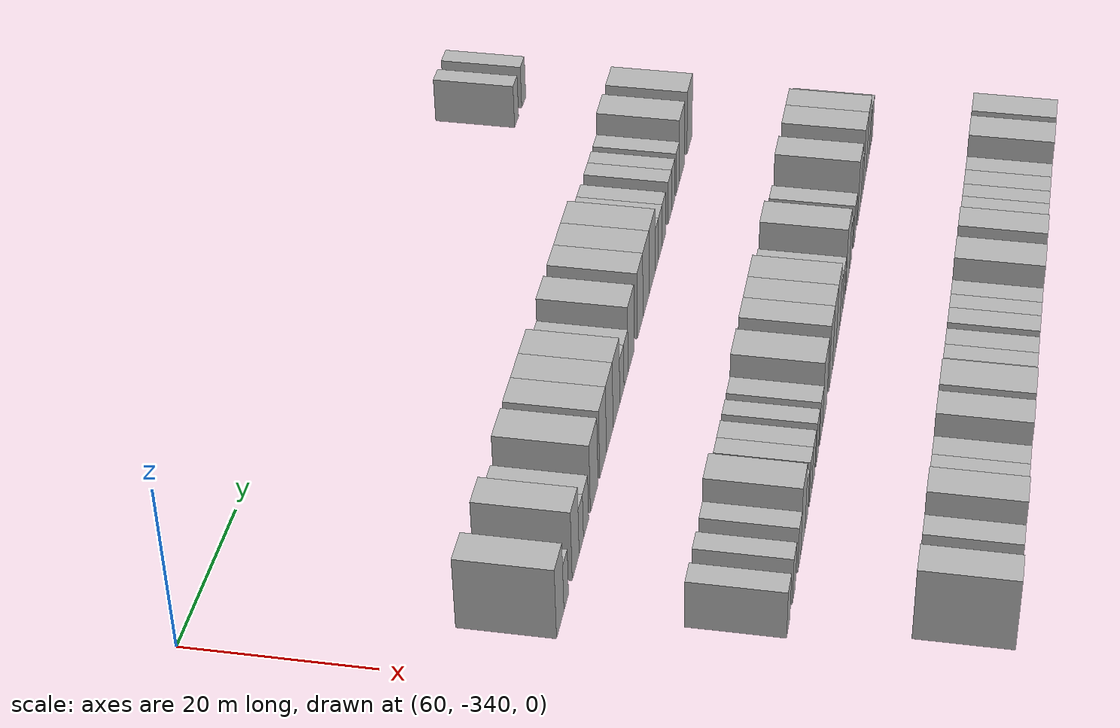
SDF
<sdf version="1.6">
 <world name="default">
  <model name="building_420">
   <static>1</static>
   <pose>69.0000 -244.6926 0 0.000000 0.000000 0.000000</pose>
   <link name="link">
    <pose>0 0 3.00 0 0 0</pose>
    <collision name="collision"><geometry><box><size>10.0000 2.4777 6.0000</size></box></geometry></collision>
    <visual name="visual">
     <cast_shadows>0</cast_shadows>
     <geometry><box><size>10.0000 2.4777 6.0000</size></box></geometry>
     <material>
      <script>
       <uri>model://HANNAS_wall/materials/scripts</uri>
       <uri>model://HANNAS_wall/materials/textures</uri>
       <name>vrc/HANNAS_wall</name>
      </script>
     </material>
    </visual>
   </link>
  </model>
  <model name="building_421">
   <static>1</static>
   <pose>69.0000 -240.1785 0 0.000000 0.000000 0.000000</pose>
   <link name="link">
    <pose>0 0 3.00 0 0 0</pose>
    <collision name="collision"><geometry><box><size>10.0000 2.5506 6.0000</size></box></geometry></collision>
    <visual name="visual">
     <cast_shadows>0</cast_shadows>
     <geometry><box><size>10.0000 2.5506 6.0000</size></box></geometry>
     <material>
      <script>
       <uri>model://HANNAS_wall/materials/scripts</uri>
       <uri>model://HANNAS_wall/materials/textures</uri>
       <name>vrc/HANNAS_wall</name>
      </script>
     </material>
    </visual>
   </link>
  </model>
  <model name="building_576">
   <static>1</static>
   <pose>91.0000 -331.3792 0 0.000000 0.000000 0.000000</pose>
   <link name="link">
    <pose>0 0 4.50 0 0 0</pose>
    <collision name="collision"><geometry><box><size>10.0000 3.8720 9.0000</size></box></geometry></collision>
    <visual name="visual">
     <cast_shadows>0</cast_shadows>
     <geometry><box><size>10.0000 3.8720 9.0000</size></box></geometry>
     <material>
      <script>
       <uri>model://HANNAS_wall/materials/scripts</uri>
       <uri>model://HANNAS_wall/materials/textures</uri>
       <name>vrc/HANNAS_wall</name>
      </script>
     </material>
    </visual>
   </link>
  </model>
  <model name="building_577">
   <static>1</static>
   <pose>91.0000 -328.2368 0 0.000000 0.000000 0.000000</pose>
   <link name="link">
    <pose>0 0 3.00 0 0 0</pose>
    <collision name="collision"><geometry><box><size>10.0000 2.4127 6.0000</size></box></geometry></collision>
    <visual name="visual">
     <cast_shadows>0</cast_shadows>
     <geometry><box><size>10.0000 2.4127 6.0000</size></box></geometry>
     <material>
      <script>
       <uri>model://HANNAS_wall/materials/scripts</uri>
       <uri>model://HANNAS_wall/materials/textures</uri>
       <name>vrc/HANNAS_wall</name>
      </script>
     </material>
    </visual>
   </link>
  </model>
  <model name="building_578">
   <static>1</static>
   <pose>91.0000 -323.1282 0 0.000000 0.000000 0.000000</pose>
   <link name="link">
    <pose>0 0 4.50 0 0 0</pose>
    <collision name="collision"><geometry><box><size>10.0000 3.8047 9.0000</size></box></geometry></collision>
    <visual name="visual">
     <cast_shadows>0</cast_shadows>
     <geometry><box><size>10.0000 3.8047 9.0000</size></box></geometry>
     <material>
      <script>
       <uri>model://HANNAS_wall/materials/scripts</uri>
       <uri>model://HANNAS_wall/materials/textures</uri>
       <name>vrc/HANNAS_wall</name>
      </script>
     </material>
    </visual>
   </link>
  </model>
  <model name="building_579">
   <static>1</static>
   <pose>91.0000 -320.0210 0 0.000000 0.000000 0.000000</pose>
   <link name="link">
    <pose>0 0 3.00 0 0 0</pose>
    <collision name="collision"><geometry><box><size>10.0000 2.4098 6.0000</size></box></geometry></collision>
    <visual name="visual">
     <cast_shadows>0</cast_shadows>
     <geometry><box><size>10.0000 2.4098 6.0000</size></box></geometry>
     <material>
      <script>
       <uri>model://HANNAS_wall/materials/scripts</uri>
       <uri>model://HANNAS_wall/materials/textures</uri>
       <name>vrc/HANNAS_wall</name>
      </script>
     </material>
    </visual>
   </link>
  </model>
  <model name="building_580">
   <static>1</static>
   <pose>91.0000 -317.3515 0 0.000000 0.000000 0.000000</pose>
   <link name="link">
    <pose>0 0 3.00 0 0 0</pose>
    <collision name="collision"><geometry><box><size>10.0000 2.9292 6.0000</size></box></geometry></collision>
    <visual name="visual">
     <cast_shadows>0</cast_shadows>
     <geometry><box><size>10.0000 2.9292 6.0000</size></box></geometry>
     <material>
      <script>
       <uri>model://HANNAS_wall/materials/scripts</uri>
       <uri>model://HANNAS_wall/materials/textures</uri>
       <name>vrc/HANNAS_wall</name>
      </script>
     </material>
    </visual>
   </link>
  </model>
  <model name="building_581">
   <static>1</static>
   <pose>91.0000 -312.6410 0 0.000000 0.000000 0.000000</pose>
   <link name="link">
    <pose>0 0 4.50 0 0 0</pose>
    <collision name="collision"><geometry><box><size>10.0000 4.4918 9.0000</size></box></geometry></collision>
    <visual name="visual">
     <cast_shadows>0</cast_shadows>
     <geometry><box><size>10.0000 4.4918 9.0000</size></box></geometry>
     <material>
      <script>
       <uri>model://HANNAS_wall/materials/scripts</uri>
       <uri>model://HANNAS_wall/materials/textures</uri>
       <name>vrc/HANNAS_wall</name>
      </script>
     </material>
    </visual>
   </link>
  </model>
  <model name="building_582">
   <static>1</static>
   <pose>91.0000 -307.3725 0 0.000000 0.000000 0.000000</pose>
   <link name="link">
    <pose>0 0 4.50 0 0 0</pose>
    <collision name="collision"><geometry><box><size>10.0000 4.0453 9.0000</size></box></geometry></collision>
    <visual name="visual">
     <cast_shadows>0</cast_shadows>
     <geometry><box><size>10.0000 4.0453 9.0000</size></box></geometry>
     <material>
      <script>
       <uri>model://HANNAS_wall/materials/scripts</uri>
       <uri>model://HANNAS_wall/materials/textures</uri>
       <name>vrc/HANNAS_wall</name>
      </script>
     </material>
    </visual>
   </link>
  </model>
  <model name="building_583">
   <static>1</static>
   <pose>91.0000 -303.3075 0 0.000000 0.000000 0.000000</pose>
   <link name="link">
    <pose>0 0 4.50 0 0 0</pose>
    <collision name="collision"><geometry><box><size>10.0000 4.0848 9.0000</size></box></geometry></collision>
    <visual name="visual">
     <cast_shadows>0</cast_shadows>
     <geometry><box><size>10.0000 4.0848 9.0000</size></box></geometry>
     <material>
      <script>
       <uri>model://HANNAS_wall/materials/scripts</uri>
       <uri>model://HANNAS_wall/materials/textures</uri>
       <name>vrc/HANNAS_wall</name>
      </script>
     </material>
    </visual>
   </link>
  </model>
  <model name="building_584">
   <static>1</static>
   <pose>91.0000 -299.1577 0 0.000000 0.000000 0.000000</pose>
   <link name="link">
    <pose>0 0 4.50 0 0 0</pose>
    <collision name="collision"><geometry><box><size>10.0000 4.2147 9.0000</size></box></geometry></collision>
    <visual name="visual">
     <cast_shadows>0</cast_shadows>
     <geometry><box><size>10.0000 4.2147 9.0000</size></box></geometry>
     <material>
      <script>
       <uri>model://HANNAS_wall/materials/scripts</uri>
       <uri>model://HANNAS_wall/materials/textures</uri>
       <name>vrc/HANNAS_wall</name>
      </script>
     </material>
    </visual>
   </link>
  </model>
  <model name="building_585">
   <static>1</static>
   <pose>91.0000 -295.7177 0 0.000000 0.000000 0.000000</pose>
   <link name="link">
    <pose>0 0 3.00 0 0 0</pose>
    <collision name="collision"><geometry><box><size>10.0000 2.6655 6.0000</size></box></geometry></collision>
    <visual name="visual">
     <cast_shadows>0</cast_shadows>
     <geometry><box><size>10.0000 2.6655 6.0000</size></box></geometry>
     <material>
      <script>
       <uri>model://HANNAS_wall/materials/scripts</uri>
       <uri>model://HANNAS_wall/materials/textures</uri>
       <name>vrc/HANNAS_wall</name>
      </script>
     </material>
    </visual>
   </link>
  </model>
  <model name="building_586">
   <static>1</static>
   <pose>91.0000 -293.0363 0 0.000000 0.000000 0.000000</pose>
   <link name="link">
    <pose>0 0 3.00 0 0 0</pose>
    <collision name="collision"><geometry><box><size>10.0000 2.6972 6.0000</size></box></geometry></collision>
    <visual name="visual">
     <cast_shadows>0</cast_shadows>
     <geometry><box><size>10.0000 2.6972 6.0000</size></box></geometry>
     <material>
      <script>
       <uri>model://HANNAS_wall/materials/scripts</uri>
       <uri>model://HANNAS_wall/materials/textures</uri>
       <name>vrc/HANNAS_wall</name>
      </script>
     </material>
    </visual>
   </link>
  </model>
  <model name="building_587">
   <static>1</static>
   <pose>91.0000 -289.6109 0 0.000000 0.000000 0.000000</pose>
   <link name="link">
    <pose>0 0 4.50 0 0 0</pose>
    <collision name="collision"><geometry><box><size>10.0000 4.1536 9.0000</size></box></geometry></collision>
    <visual name="visual">
     <cast_shadows>0</cast_shadows>
     <geometry><box><size>10.0000 4.1536 9.0000</size></box></geometry>
     <material>
      <script>
       <uri>model://HANNAS_wall/materials/scripts</uri>
       <uri>model://HANNAS_wall/materials/textures</uri>
       <name>vrc/HANNAS_wall</name>
      </script>
     </material>
    </visual>
   </link>
  </model>
  <model name="building_588">
   <static>1</static>
   <pose>91.0000 -283.5965 0 0.000000 0.000000 0.000000</pose>
   <link name="link">
    <pose>0 0 4.50 0 0 0</pose>
    <collision name="collision"><geometry><box><size>10.0000 3.8751 9.0000</size></box></geometry></collision>
    <visual name="visual">
     <cast_shadows>0</cast_shadows>
     <geometry><box><size>10.0000 3.8751 9.0000</size></box></geometry>
     <material>
      <script>
       <uri>model://HANNAS_wall/materials/scripts</uri>
       <uri>model://HANNAS_wall/materials/textures</uri>
       <name>vrc/HANNAS_wall</name>
      </script>
     </material>
    </visual>
   </link>
  </model>
  <model name="building_589">
   <static>1</static>
   <pose>91.0000 -279.5298 0 0.000000 0.000000 0.000000</pose>
   <link name="link">
    <pose>0 0 4.50 0 0 0</pose>
    <collision name="collision"><geometry><box><size>10.0000 4.2583 9.0000</size></box></geometry></collision>
    <visual name="visual">
     <cast_shadows>0</cast_shadows>
     <geometry><box><size>10.0000 4.2583 9.0000</size></box></geometry>
     <material>
      <script>
       <uri>model://HANNAS_wall/materials/scripts</uri>
       <uri>model://HANNAS_wall/materials/textures</uri>
       <name>vrc/HANNAS_wall</name>
      </script>
     </material>
    </visual>
   </link>
  </model>
  <model name="building_590">
   <static>1</static>
   <pose>91.0000 -275.2527 0 0.000000 0.000000 0.000000</pose>
   <link name="link">
    <pose>0 0 4.50 0 0 0</pose>
    <collision name="collision"><geometry><box><size>10.0000 4.2958 9.0000</size></box></geometry></collision>
    <visual name="visual">
     <cast_shadows>0</cast_shadows>
     <geometry><box><size>10.0000 4.2958 9.0000</size></box></geometry>
     <material>
      <script>
       <uri>model://HANNAS_wall/materials/scripts</uri>
       <uri>model://HANNAS_wall/materials/textures</uri>
       <name>vrc/HANNAS_wall</name>
      </script>
     </material>
    </visual>
   </link>
  </model>
  <model name="building_591">
   <static>1</static>
   <pose>91.0000 -271.8730 0 0.000000 0.000000 0.000000</pose>
   <link name="link">
    <pose>0 0 3.00 0 0 0</pose>
    <collision name="collision"><geometry><box><size>10.0000 2.4636 6.0000</size></box></geometry></collision>
    <visual name="visual">
     <cast_shadows>0</cast_shadows>
     <geometry><box><size>10.0000 2.4636 6.0000</size></box></geometry>
     <material>
      <script>
       <uri>model://HANNAS_wall/materials/scripts</uri>
       <uri>model://HANNAS_wall/materials/textures</uri>
       <name>vrc/HANNAS_wall</name>
      </script>
     </material>
    </visual>
   </link>
  </model>
  <model name="building_592">
   <static>1</static>
   <pose>91.0000 -269.2854 0 0.000000 0.000000 0.000000</pose>
   <link name="link">
    <pose>0 0 3.00 0 0 0</pose>
    <collision name="collision"><geometry><box><size>10.0000 2.7117 6.0000</size></box></geometry></collision>
    <visual name="visual">
     <cast_shadows>0</cast_shadows>
     <geometry><box><size>10.0000 2.7117 6.0000</size></box></geometry>
     <material>
      <script>
       <uri>model://HANNAS_wall/materials/scripts</uri>
       <uri>model://HANNAS_wall/materials/textures</uri>
       <name>vrc/HANNAS_wall</name>
      </script>
     </material>
    </visual>
   </link>
  </model>
  <model name="building_593">
   <static>1</static>
   <pose>91.0000 -266.6570 0 0.000000 0.000000 0.000000</pose>
   <link name="link">
    <pose>0 0 3.00 0 0 0</pose>
    <collision name="collision"><geometry><box><size>10.0000 2.5451 6.0000</size></box></geometry></collision>
    <visual name="visual">
     <cast_shadows>0</cast_shadows>
     <geometry><box><size>10.0000 2.5451 6.0000</size></box></geometry>
     <material>
      <script>
       <uri>model://HANNAS_wall/materials/scripts</uri>
       <uri>model://HANNAS_wall/materials/textures</uri>
       <name>vrc/HANNAS_wall</name>
      </script>
     </material>
    </visual>
   </link>
  </model>
  <model name="building_594">
   <static>1</static>
   <pose>91.0000 -262.1026 0 0.000000 0.000000 0.000000</pose>
   <link name="link">
    <pose>0 0 3.00 0 0 0</pose>
    <collision name="collision"><geometry><box><size>10.0000 2.5636 6.0000</size></box></geometry></collision>
    <visual name="visual">
     <cast_shadows>0</cast_shadows>
     <geometry><box><size>10.0000 2.5636 6.0000</size></box></geometry>
     <material>
      <script>
       <uri>model://HANNAS_wall/materials/scripts</uri>
       <uri>model://HANNAS_wall/materials/textures</uri>
       <name>vrc/HANNAS_wall</name>
      </script>
     </material>
    </visual>
   </link>
  </model>
  <model name="building_595">
   <static>1</static>
   <pose>91.0000 -259.6098 0 0.000000 0.000000 0.000000</pose>
   <link name="link">
    <pose>0 0 3.00 0 0 0</pose>
    <collision name="collision"><geometry><box><size>10.0000 2.4220 6.0000</size></box></geometry></collision>
    <visual name="visual">
     <cast_shadows>0</cast_shadows>
     <geometry><box><size>10.0000 2.4220 6.0000</size></box></geometry>
     <material>
      <script>
       <uri>model://HANNAS_wall/materials/scripts</uri>
       <uri>model://HANNAS_wall/materials/textures</uri>
       <name>vrc/HANNAS_wall</name>
      </script>
     </material>
    </visual>
   </link>
  </model>
  <model name="building_596">
   <static>1</static>
   <pose>91.0000 -256.0895 0 0.000000 0.000000 0.000000</pose>
   <link name="link">
    <pose>0 0 3.00 0 0 0</pose>
    <collision name="collision"><geometry><box><size>10.0000 2.6187 6.0000</size></box></geometry></collision>
    <visual name="visual">
     <cast_shadows>0</cast_shadows>
     <geometry><box><size>10.0000 2.6187 6.0000</size></box></geometry>
     <material>
      <script>
       <uri>model://HANNAS_wall/materials/scripts</uri>
       <uri>model://HANNAS_wall/materials/textures</uri>
       <name>vrc/HANNAS_wall</name>
      </script>
     </material>
    </visual>
   </link>
  </model>
  <model name="building_597">
   <static>1</static>
   <pose>91.0000 -252.6526 0 0.000000 0.000000 0.000000</pose>
   <link name="link">
    <pose>0 0 4.50 0 0 0</pose>
    <collision name="collision"><geometry><box><size>10.0000 4.2550 9.0000</size></box></geometry></collision>
    <visual name="visual">
     <cast_shadows>0</cast_shadows>
     <geometry><box><size>10.0000 4.2550 9.0000</size></box></geometry>
     <material>
      <script>
       <uri>model://HANNAS_wall/materials/scripts</uri>
       <uri>model://HANNAS_wall/materials/textures</uri>
       <name>vrc/HANNAS_wall</name>
      </script>
     </material>
    </visual>
   </link>
  </model>
  <model name="building_598">
   <static>1</static>
   <pose>91.0000 -246.3893 0 0.000000 0.000000 0.000000</pose>
   <link name="link">
    <pose>0 0 4.50 0 0 0</pose>
    <collision name="collision"><geometry><box><size>10.0000 4.2717 9.0000</size></box></geometry></collision>
    <visual name="visual">
     <cast_shadows>0</cast_shadows>
     <geometry><box><size>10.0000 4.2717 9.0000</size></box></geometry>
     <material>
      <script>
       <uri>model://HANNAS_wall/materials/scripts</uri>
       <uri>model://HANNAS_wall/materials/textures</uri>
       <name>vrc/HANNAS_wall</name>
      </script>
     </material>
    </visual>
   </link>
  </model>
  <model name="building_768">
   <static>1</static>
   <pose>113.0000 -328.4091 0 0.000000 0.000000 0.000000</pose>
   <link name="link">
    <pose>0 0 3.00 0 0 0</pose>
    <collision name="collision"><geometry><box><size>10.0000 2.7347 6.0000</size></box></geometry></collision>
    <visual name="visual">
     <cast_shadows>0</cast_shadows>
     <geometry><box><size>10.0000 2.7347 6.0000</size></box></geometry>
     <material>
      <script>
       <uri>model://HANNAS_wall/materials/scripts</uri>
       <uri>model://HANNAS_wall/materials/textures</uri>
       <name>vrc/HANNAS_wall</name>
      </script>
     </material>
    </visual>
   </link>
  </model>
  <model name="building_769">
   <static>1</static>
   <pose>113.0000 -323.7801 0 0.000000 0.000000 0.000000</pose>
   <link name="link">
    <pose>0 0 3.00 0 0 0</pose>
    <collision name="collision"><geometry><box><size>10.0000 2.5232 6.0000</size></box></geometry></collision>
    <visual name="visual">
     <cast_shadows>0</cast_shadows>
     <geometry><box><size>10.0000 2.5232 6.0000</size></box></geometry>
     <material>
      <script>
       <uri>model://HANNAS_wall/materials/scripts</uri>
       <uri>model://HANNAS_wall/materials/textures</uri>
       <name>vrc/HANNAS_wall</name>
      </script>
     </material>
    </visual>
   </link>
  </model>
  <model name="building_770">
   <static>1</static>
   <pose>113.0000 -319.2558 0 0.000000 0.000000 0.000000</pose>
   <link name="link">
    <pose>0 0 3.00 0 0 0</pose>
    <collision name="collision"><geometry><box><size>10.0000 2.5254 6.0000</size></box></geometry></collision>
    <visual name="visual">
     <cast_shadows>0</cast_shadows>
     <geometry><box><size>10.0000 2.5254 6.0000</size></box></geometry>
     <material>
      <script>
       <uri>model://HANNAS_wall/materials/scripts</uri>
       <uri>model://HANNAS_wall/materials/textures</uri>
       <name>vrc/HANNAS_wall</name>
      </script>
     </material>
    </visual>
   </link>
  </model>
  <model name="building_771">
   <static>1</static>
   <pose>113.0000 -316.0476 0 0.000000 0.000000 0.000000</pose>
   <link name="link">
    <pose>0 0 4.50 0 0 0</pose>
    <collision name="collision"><geometry><box><size>10.0000 3.8910 9.0000</size></box></geometry></collision>
    <visual name="visual">
     <cast_shadows>0</cast_shadows>
     <geometry><box><size>10.0000 3.8910 9.0000</size></box></geometry>
     <material>
      <script>
       <uri>model://HANNAS_wall/materials/scripts</uri>
       <uri>model://HANNAS_wall/materials/textures</uri>
       <name>vrc/HANNAS_wall</name>
      </script>
     </material>
    </visual>
   </link>
  </model>
  <model name="building_772">
   <static>1</static>
   <pose>113.0000 -312.7979 0 0.000000 0.000000 0.000000</pose>
   <link name="link">
    <pose>0 0 3.00 0 0 0</pose>
    <collision name="collision"><geometry><box><size>10.0000 2.6083 6.0000</size></box></geometry></collision>
    <visual name="visual">
     <cast_shadows>0</cast_shadows>
     <geometry><box><size>10.0000 2.6083 6.0000</size></box></geometry>
     <material>
      <script>
       <uri>model://HANNAS_wall/materials/scripts</uri>
       <uri>model://HANNAS_wall/materials/textures</uri>
       <name>vrc/HANNAS_wall</name>
      </script>
     </material>
    </visual>
   </link>
  </model>
  <model name="building_773">
   <static>1</static>
   <pose>113.0000 -309.2476 0 0.000000 0.000000 0.000000</pose>
   <link name="link">
    <pose>0 0 3.00 0 0 0</pose>
    <collision name="collision"><geometry><box><size>10.0000 2.4923 6.0000</size></box></geometry></collision>
    <visual name="visual">
     <cast_shadows>0</cast_shadows>
     <geometry><box><size>10.0000 2.4923 6.0000</size></box></geometry>
     <material>
      <script>
       <uri>model://HANNAS_wall/materials/scripts</uri>
       <uri>model://HANNAS_wall/materials/textures</uri>
       <name>vrc/HANNAS_wall</name>
      </script>
     </material>
    </visual>
   </link>
  </model>
  <model name="building_774">
   <static>1</static>
   <pose>113.0000 -306.6369 0 0.000000 0.000000 0.000000</pose>
   <link name="link">
    <pose>0 0 3.00 0 0 0</pose>
    <collision name="collision"><geometry><box><size>10.0000 2.7291 6.0000</size></box></geometry></collision>
    <visual name="visual">
     <cast_shadows>0</cast_shadows>
     <geometry><box><size>10.0000 2.7291 6.0000</size></box></geometry>
     <material>
      <script>
       <uri>model://HANNAS_wall/materials/scripts</uri>
       <uri>model://HANNAS_wall/materials/textures</uri>
       <name>vrc/HANNAS_wall</name>
      </script>
     </material>
    </visual>
   </link>
  </model>
  <model name="building_775">
   <static>1</static>
   <pose>113.0000 -303.0395 0 0.000000 0.000000 0.000000</pose>
   <link name="link">
    <pose>0 0 3.00 0 0 0</pose>
    <collision name="collision"><geometry><box><size>10.0000 2.4659 6.0000</size></box></geometry></collision>
    <visual name="visual">
     <cast_shadows>0</cast_shadows>
     <geometry><box><size>10.0000 2.4659 6.0000</size></box></geometry>
     <material>
      <script>
       <uri>model://HANNAS_wall/materials/scripts</uri>
       <uri>model://HANNAS_wall/materials/textures</uri>
       <name>vrc/HANNAS_wall</name>
      </script>
     </material>
    </visual>
   </link>
  </model>
  <model name="building_776">
   <static>1</static>
   <pose>113.0000 -299.3838 0 0.000000 0.000000 0.000000</pose>
   <link name="link">
    <pose>0 0 3.00 0 0 0</pose>
    <collision name="collision"><geometry><box><size>10.0000 2.8454 6.0000</size></box></geometry></collision>
    <visual name="visual">
     <cast_shadows>0</cast_shadows>
     <geometry><box><size>10.0000 2.8454 6.0000</size></box></geometry>
     <material>
      <script>
       <uri>model://HANNAS_wall/materials/scripts</uri>
       <uri>model://HANNAS_wall/materials/textures</uri>
       <name>vrc/HANNAS_wall</name>
      </script>
     </material>
    </visual>
   </link>
  </model>
  <model name="building_777">
   <static>1</static>
   <pose>113.0000 -295.7605 0 0.000000 0.000000 0.000000</pose>
   <link name="link">
    <pose>0 0 4.50 0 0 0</pose>
    <collision name="collision"><geometry><box><size>10.0000 4.4012 9.0000</size></box></geometry></collision>
    <visual name="visual">
     <cast_shadows>0</cast_shadows>
     <geometry><box><size>10.0000 4.4012 9.0000</size></box></geometry>
     <material>
      <script>
       <uri>model://HANNAS_wall/materials/scripts</uri>
       <uri>model://HANNAS_wall/materials/textures</uri>
       <name>vrc/HANNAS_wall</name>
      </script>
     </material>
    </visual>
   </link>
  </model>
  <model name="building_778">
   <static>1</static>
   <pose>113.0000 -289.7410 0 0.000000 0.000000 0.000000</pose>
   <link name="link">
    <pose>0 0 4.50 0 0 0</pose>
    <collision name="collision"><geometry><box><size>10.0000 3.6378 9.0000</size></box></geometry></collision>
    <visual name="visual">
     <cast_shadows>0</cast_shadows>
     <geometry><box><size>10.0000 3.6378 9.0000</size></box></geometry>
     <material>
      <script>
       <uri>model://HANNAS_wall/materials/scripts</uri>
       <uri>model://HANNAS_wall/materials/textures</uri>
       <name>vrc/HANNAS_wall</name>
      </script>
     </material>
    </visual>
   </link>
  </model>
  <model name="building_779">
   <static>1</static>
   <pose>113.0000 -286.0268 0 0.000000 0.000000 0.000000</pose>
   <link name="link">
    <pose>0 0 4.50 0 0 0</pose>
    <collision name="collision"><geometry><box><size>10.0000 3.7908 9.0000</size></box></geometry></collision>
    <visual name="visual">
     <cast_shadows>0</cast_shadows>
     <geometry><box><size>10.0000 3.7908 9.0000</size></box></geometry>
     <material>
      <script>
       <uri>model://HANNAS_wall/materials/scripts</uri>
       <uri>model://HANNAS_wall/materials/textures</uri>
       <name>vrc/HANNAS_wall</name>
      </script>
     </material>
    </visual>
   </link>
  </model>
  <model name="building_780">
   <static>1</static>
   <pose>113.0000 -282.1297 0 0.000000 0.000000 0.000000</pose>
   <link name="link">
    <pose>0 0 4.50 0 0 0</pose>
    <collision name="collision"><geometry><box><size>10.0000 4.0032 9.0000</size></box></geometry></collision>
    <visual name="visual">
     <cast_shadows>0</cast_shadows>
     <geometry><box><size>10.0000 4.0032 9.0000</size></box></geometry>
     <material>
      <script>
       <uri>model://HANNAS_wall/materials/scripts</uri>
       <uri>model://HANNAS_wall/materials/textures</uri>
       <name>vrc/HANNAS_wall</name>
      </script>
     </material>
    </visual>
   </link>
  </model>
  <model name="building_781">
   <static>1</static>
   <pose>113.0000 -278.7292 0 0.000000 0.000000 0.000000</pose>
   <link name="link">
    <pose>0 0 3.00 0 0 0</pose>
    <collision name="collision"><geometry><box><size>10.0000 2.7979 6.0000</size></box></geometry></collision>
    <visual name="visual">
     <cast_shadows>0</cast_shadows>
     <geometry><box><size>10.0000 2.7979 6.0000</size></box></geometry>
     <material>
      <script>
       <uri>model://HANNAS_wall/materials/scripts</uri>
       <uri>model://HANNAS_wall/materials/textures</uri>
       <name>vrc/HANNAS_wall</name>
      </script>
     </material>
    </visual>
   </link>
  </model>
  <model name="building_782">
   <static>1</static>
   <pose>113.0000 -276.0662 0 0.000000 0.000000 0.000000</pose>
   <link name="link">
    <pose>0 0 3.00 0 0 0</pose>
    <collision name="collision"><geometry><box><size>10.0000 2.5279 6.0000</size></box></geometry></collision>
    <visual name="visual">
     <cast_shadows>0</cast_shadows>
     <geometry><box><size>10.0000 2.5279 6.0000</size></box></geometry>
     <material>
      <script>
       <uri>model://HANNAS_wall/materials/scripts</uri>
       <uri>model://HANNAS_wall/materials/textures</uri>
       <name>vrc/HANNAS_wall</name>
      </script>
     </material>
    </visual>
   </link>
  </model>
  <model name="building_783">
   <static>1</static>
   <pose>113.0000 -271.7097 0 0.000000 0.000000 0.000000</pose>
   <link name="link">
    <pose>0 0 4.50 0 0 0</pose>
    <collision name="collision"><geometry><box><size>10.0000 4.1851 9.0000</size></box></geometry></collision>
    <visual name="visual">
     <cast_shadows>0</cast_shadows>
     <geometry><box><size>10.0000 4.1851 9.0000</size></box></geometry>
     <material>
      <script>
       <uri>model://HANNAS_wall/materials/scripts</uri>
       <uri>model://HANNAS_wall/materials/textures</uri>
       <name>vrc/HANNAS_wall</name>
      </script>
     </material>
    </visual>
   </link>
  </model>
  <model name="building_784">
   <static>1</static>
   <pose>113.0000 -268.2156 0 0.000000 0.000000 0.000000</pose>
   <link name="link">
    <pose>0 0 3.00 0 0 0</pose>
    <collision name="collision"><geometry><box><size>10.0000 2.8032 6.0000</size></box></geometry></collision>
    <visual name="visual">
     <cast_shadows>0</cast_shadows>
     <geometry><box><size>10.0000 2.8032 6.0000</size></box></geometry>
     <material>
      <script>
       <uri>model://HANNAS_wall/materials/scripts</uri>
       <uri>model://HANNAS_wall/materials/textures</uri>
       <name>vrc/HANNAS_wall</name>
      </script>
     </material>
    </visual>
   </link>
  </model>
  <model name="building_785">
   <static>1</static>
   <pose>113.0000 -263.4696 0 0.000000 0.000000 0.000000</pose>
   <link name="link">
    <pose>0 0 3.00 0 0 0</pose>
    <collision name="collision"><geometry><box><size>10.0000 2.6888 6.0000</size></box></geometry></collision>
    <visual name="visual">
     <cast_shadows>0</cast_shadows>
     <geometry><box><size>10.0000 2.6888 6.0000</size></box></geometry>
     <material>
      <script>
       <uri>model://HANNAS_wall/materials/scripts</uri>
       <uri>model://HANNAS_wall/materials/textures</uri>
       <name>vrc/HANNAS_wall</name>
      </script>
     </material>
    </visual>
   </link>
  </model>
  <model name="building_786">
   <static>1</static>
   <pose>113.0000 -258.1854 0 0.000000 0.000000 0.000000</pose>
   <link name="link">
    <pose>0 0 4.50 0 0 0</pose>
    <collision name="collision"><geometry><box><size>10.0000 3.8796 9.0000</size></box></geometry></collision>
    <visual name="visual">
     <cast_shadows>0</cast_shadows>
     <geometry><box><size>10.0000 3.8796 9.0000</size></box></geometry>
     <material>
      <script>
       <uri>model://HANNAS_wall/materials/scripts</uri>
       <uri>model://HANNAS_wall/materials/textures</uri>
       <name>vrc/HANNAS_wall</name>
      </script>
     </material>
    </visual>
   </link>
  </model>
  <model name="building_787">
   <static>1</static>
   <pose>113.0000 -254.8446 0 0.000000 0.000000 0.000000</pose>
   <link name="link">
    <pose>0 0 3.00 0 0 0</pose>
    <collision name="collision"><geometry><box><size>10.0000 2.8020 6.0000</size></box></geometry></collision>
    <visual name="visual">
     <cast_shadows>0</cast_shadows>
     <geometry><box><size>10.0000 2.8020 6.0000</size></box></geometry>
     <material>
      <script>
       <uri>model://HANNAS_wall/materials/scripts</uri>
       <uri>model://HANNAS_wall/materials/textures</uri>
       <name>vrc/HANNAS_wall</name>
      </script>
     </material>
    </visual>
   </link>
  </model>
  <model name="building_788">
   <static>1</static>
   <pose>113.0000 -251.4387 0 0.000000 0.000000 0.000000</pose>
   <link name="link">
    <pose>0 0 4.50 0 0 0</pose>
    <collision name="collision"><geometry><box><size>10.0000 4.0098 9.0000</size></box></geometry></collision>
    <visual name="visual">
     <cast_shadows>0</cast_shadows>
     <geometry><box><size>10.0000 4.0098 9.0000</size></box></geometry>
     <material>
      <script>
       <uri>model://HANNAS_wall/materials/scripts</uri>
       <uri>model://HANNAS_wall/materials/textures</uri>
       <name>vrc/HANNAS_wall</name>
      </script>
     </material>
    </visual>
   </link>
  </model>
  <model name="building_789">
   <static>1</static>
   <pose>113.0000 -247.6213 0 0.000000 0.000000 0.000000</pose>
   <link name="link">
    <pose>0 0 4.50 0 0 0</pose>
    <collision name="collision"><geometry><box><size>10.0000 3.6249 9.0000</size></box></geometry></collision>
    <visual name="visual">
     <cast_shadows>0</cast_shadows>
     <geometry><box><size>10.0000 3.6249 9.0000</size></box></geometry>
     <material>
      <script>
       <uri>model://HANNAS_wall/materials/scripts</uri>
       <uri>model://HANNAS_wall/materials/textures</uri>
       <name>vrc/HANNAS_wall</name>
      </script>
     </material>
    </visual>
   </link>
  </model>
  <model name="building_790">
   <static>1</static>
   <pose>113.0000 -244.6014 0 0.000000 0.000000 0.000000</pose>
   <link name="link">
    <pose>0 0 3.00 0 0 0</pose>
    <collision name="collision"><geometry><box><size>10.0000 2.4151 6.0000</size></box></geometry></collision>
    <visual name="visual">
     <cast_shadows>0</cast_shadows>
     <geometry><box><size>10.0000 2.4151 6.0000</size></box></geometry>
     <material>
      <script>
       <uri>model://HANNAS_wall/materials/scripts</uri>
       <uri>model://HANNAS_wall/materials/textures</uri>
       <name>vrc/HANNAS_wall</name>
      </script>
     </material>
    </visual>
   </link>
  </model>
  <model name="building_791">
   <static>1</static>
   <pose>113.0000 -242.1641 0 0.000000 0.000000 0.000000</pose>
   <link name="link">
    <pose>0 0 3.00 0 0 0</pose>
    <collision name="collision"><geometry><box><size>10.0000 2.4594 6.0000</size></box></geometry></collision>
    <visual name="visual">
     <cast_shadows>0</cast_shadows>
     <geometry><box><size>10.0000 2.4594 6.0000</size></box></geometry>
     <material>
      <script>
       <uri>model://HANNAS_wall/materials/scripts</uri>
       <uri>model://HANNAS_wall/materials/textures</uri>
       <name>vrc/HANNAS_wall</name>
      </script>
     </material>
    </visual>
   </link>
  </model>
  <model name="building_952">
   <static>1</static>
   <pose>135.0000 -326.0724 0 0.000000 0.000000 0.000000</pose>
   <link name="link">
    <pose>0 0 4.50 0 0 0</pose>
    <collision name="collision"><geometry><box><size>10.0000 3.7649 9.0000</size></box></geometry></collision>
    <visual name="visual">
     <cast_shadows>0</cast_shadows>
     <geometry><box><size>10.0000 3.7649 9.0000</size></box></geometry>
     <material>
      <script>
       <uri>model://HANNAS_wall/materials/scripts</uri>
       <uri>model://HANNAS_wall/materials/textures</uri>
       <name>vrc/HANNAS_wall</name>
      </script>
     </material>
    </visual>
   </link>
  </model>
  <model name="building_953">
   <static>1</static>
   <pose>135.0000 -322.8312 0 0.000000 0.000000 0.000000</pose>
   <link name="link">
    <pose>0 0 3.00 0 0 0</pose>
    <collision name="collision"><geometry><box><size>10.0000 2.7175 6.0000</size></box></geometry></collision>
    <visual name="visual">
     <cast_shadows>0</cast_shadows>
     <geometry><box><size>10.0000 2.7175 6.0000</size></box></geometry>
     <material>
      <script>
       <uri>model://HANNAS_wall/materials/scripts</uri>
       <uri>model://HANNAS_wall/materials/textures</uri>
       <name>vrc/HANNAS_wall</name>
      </script>
     </material>
    </visual>
   </link>
  </model>
  <model name="building_954">
   <static>1</static>
   <pose>135.0000 -317.9939 0 0.000000 0.000000 0.000000</pose>
   <link name="link">
    <pose>0 0 3.00 0 0 0</pose>
    <collision name="collision"><geometry><box><size>10.0000 2.9570 6.0000</size></box></geometry></collision>
    <visual name="visual">
     <cast_shadows>0</cast_shadows>
     <geometry><box><size>10.0000 2.9570 6.0000</size></box></geometry>
     <material>
      <script>
       <uri>model://HANNAS_wall/materials/scripts</uri>
       <uri>model://HANNAS_wall/materials/textures</uri>
       <name>vrc/HANNAS_wall</name>
      </script>
     </material>
    </visual>
   </link>
  </model>
  <model name="building_955">
   <static>1</static>
   <pose>135.0000 -314.5991 0 0.000000 0.000000 0.000000</pose>
   <link name="link">
    <pose>0 0 4.50 0 0 0</pose>
    <collision name="collision"><geometry><box><size>10.0000 3.8326 9.0000</size></box></geometry></collision>
    <visual name="visual">
     <cast_shadows>0</cast_shadows>
     <geometry><box><size>10.0000 3.8326 9.0000</size></box></geometry>
     <material>
      <script>
       <uri>model://HANNAS_wall/materials/scripts</uri>
       <uri>model://HANNAS_wall/materials/textures</uri>
       <name>vrc/HANNAS_wall</name>
      </script>
     </material>
    </visual>
   </link>
  </model>
  <model name="building_956">
   <static>1</static>
   <pose>135.0000 -311.3733 0 0.000000 0.000000 0.000000</pose>
   <link name="link">
    <pose>0 0 3.00 0 0 0</pose>
    <collision name="collision"><geometry><box><size>10.0000 2.6191 6.0000</size></box></geometry></collision>
    <visual name="visual">
     <cast_shadows>0</cast_shadows>
     <geometry><box><size>10.0000 2.6191 6.0000</size></box></geometry>
     <material>
      <script>
       <uri>model://HANNAS_wall/materials/scripts</uri>
       <uri>model://HANNAS_wall/materials/textures</uri>
       <name>vrc/HANNAS_wall</name>
      </script>
     </material>
    </visual>
   </link>
  </model>
  <model name="building_957">
   <static>1</static>
   <pose>135.0000 -308.6390 0 0.000000 0.000000 0.000000</pose>
   <link name="link">
    <pose>0 0 3.00 0 0 0</pose>
    <collision name="collision"><geometry><box><size>10.0000 2.8495 6.0000</size></box></geometry></collision>
    <visual name="visual">
     <cast_shadows>0</cast_shadows>
     <geometry><box><size>10.0000 2.8495 6.0000</size></box></geometry>
     <material>
      <script>
       <uri>model://HANNAS_wall/materials/scripts</uri>
       <uri>model://HANNAS_wall/materials/textures</uri>
       <name>vrc/HANNAS_wall</name>
      </script>
     </material>
    </visual>
   </link>
  </model>
  <model name="building_958">
   <static>1</static>
   <pose>135.0000 -305.7606 0 0.000000 0.000000 0.000000</pose>
   <link name="link">
    <pose>0 0 3.00 0 0 0</pose>
    <collision name="collision"><geometry><box><size>10.0000 2.9073 6.0000</size></box></geometry></collision>
    <visual name="visual">
     <cast_shadows>0</cast_shadows>
     <geometry><box><size>10.0000 2.9073 6.0000</size></box></geometry>
     <material>
      <script>
       <uri>model://HANNAS_wall/materials/scripts</uri>
       <uri>model://HANNAS_wall/materials/textures</uri>
       <name>vrc/HANNAS_wall</name>
      </script>
     </material>
    </visual>
   </link>
  </model>
  <model name="building_959">
   <static>1</static>
   <pose>135.0000 -302.4294 0 0.000000 0.000000 0.000000</pose>
   <link name="link">
    <pose>0 0 4.50 0 0 0</pose>
    <collision name="collision"><geometry><box><size>10.0000 3.7551 9.0000</size></box></geometry></collision>
    <visual name="visual">
     <cast_shadows>0</cast_shadows>
     <geometry><box><size>10.0000 3.7551 9.0000</size></box></geometry>
     <material>
      <script>
       <uri>model://HANNAS_wall/materials/scripts</uri>
       <uri>model://HANNAS_wall/materials/textures</uri>
       <name>vrc/HANNAS_wall</name>
      </script>
     </material>
    </visual>
   </link>
  </model>
  <model name="building_960">
   <static>1</static>
   <pose>135.0000 -297.3715 0 0.000000 0.000000 0.000000</pose>
   <link name="link">
    <pose>0 0 4.50 0 0 0</pose>
    <collision name="collision"><geometry><box><size>10.0000 4.3607 9.0000</size></box></geometry></collision>
    <visual name="visual">
     <cast_shadows>0</cast_shadows>
     <geometry><box><size>10.0000 4.3607 9.0000</size></box></geometry>
     <material>
      <script>
       <uri>model://HANNAS_wall/materials/scripts</uri>
       <uri>model://HANNAS_wall/materials/textures</uri>
       <name>vrc/HANNAS_wall</name>
      </script>
     </material>
    </visual>
   </link>
  </model>
  <model name="building_961">
   <static>1</static>
   <pose>135.0000 -292.7238 0 0.000000 0.000000 0.000000</pose>
   <link name="link">
    <pose>0 0 3.00 0 0 0</pose>
    <collision name="collision"><geometry><box><size>10.0000 2.9345 6.0000</size></box></geometry></collision>
    <visual name="visual">
     <cast_shadows>0</cast_shadows>
     <geometry><box><size>10.0000 2.9345 6.0000</size></box></geometry>
     <material>
      <script>
       <uri>model://HANNAS_wall/materials/scripts</uri>
       <uri>model://HANNAS_wall/materials/textures</uri>
       <name>vrc/HANNAS_wall</name>
      </script>
     </material>
    </visual>
   </link>
  </model>
  <model name="building_962">
   <static>1</static>
   <pose>135.0000 -290.0468 0 0.000000 0.000000 0.000000</pose>
   <link name="link">
    <pose>0 0 3.00 0 0 0</pose>
    <collision name="collision"><geometry><box><size>10.0000 2.4196 6.0000</size></box></geometry></collision>
    <visual name="visual">
     <cast_shadows>0</cast_shadows>
     <geometry><box><size>10.0000 2.4196 6.0000</size></box></geometry>
     <material>
      <script>
       <uri>model://HANNAS_wall/materials/scripts</uri>
       <uri>model://HANNAS_wall/materials/textures</uri>
       <name>vrc/HANNAS_wall</name>
      </script>
     </material>
    </visual>
   </link>
  </model>
  <model name="building_963">
   <static>1</static>
   <pose>135.0000 -287.4411 0 0.000000 0.000000 0.000000</pose>
   <link name="link">
    <pose>0 0 3.00 0 0 0</pose>
    <collision name="collision"><geometry><box><size>10.0000 2.7917 6.0000</size></box></geometry></collision>
    <visual name="visual">
     <cast_shadows>0</cast_shadows>
     <geometry><box><size>10.0000 2.7917 6.0000</size></box></geometry>
     <material>
      <script>
       <uri>model://HANNAS_wall/materials/scripts</uri>
       <uri>model://HANNAS_wall/materials/textures</uri>
       <name>vrc/HANNAS_wall</name>
      </script>
     </material>
    </visual>
   </link>
  </model>
  <model name="building_964">
   <static>1</static>
   <pose>135.0000 -283.6500 0 0.000000 0.000000 0.000000</pose>
   <link name="link">
    <pose>0 0 3.00 0 0 0</pose>
    <collision name="collision"><geometry><box><size>10.0000 2.7905 6.0000</size></box></geometry></collision>
    <visual name="visual">
     <cast_shadows>0</cast_shadows>
     <geometry><box><size>10.0000 2.7905 6.0000</size></box></geometry>
     <material>
      <script>
       <uri>model://HANNAS_wall/materials/scripts</uri>
       <uri>model://HANNAS_wall/materials/textures</uri>
       <name>vrc/HANNAS_wall</name>
      </script>
     </material>
    </visual>
   </link>
  </model>
  <model name="building_965">
   <static>1</static>
   <pose>135.0000 -281.0371 0 0.000000 0.000000 0.000000</pose>
   <link name="link">
    <pose>0 0 3.00 0 0 0</pose>
    <collision name="collision"><geometry><box><size>10.0000 2.4354 6.0000</size></box></geometry></collision>
    <visual name="visual">
     <cast_shadows>0</cast_shadows>
     <geometry><box><size>10.0000 2.4354 6.0000</size></box></geometry>
     <material>
      <script>
       <uri>model://HANNAS_wall/materials/scripts</uri>
       <uri>model://HANNAS_wall/materials/textures</uri>
       <name>vrc/HANNAS_wall</name>
      </script>
     </material>
    </visual>
   </link>
  </model>
  <model name="building_966">
   <static>1</static>
   <pose>135.0000 -278.5133 0 0.000000 0.000000 0.000000</pose>
   <link name="link">
    <pose>0 0 3.00 0 0 0</pose>
    <collision name="collision"><geometry><box><size>10.0000 2.6122 6.0000</size></box></geometry></collision>
    <visual name="visual">
     <cast_shadows>0</cast_shadows>
     <geometry><box><size>10.0000 2.6122 6.0000</size></box></geometry>
     <material>
      <script>
       <uri>model://HANNAS_wall/materials/scripts</uri>
       <uri>model://HANNAS_wall/materials/textures</uri>
       <name>vrc/HANNAS_wall</name>
      </script>
     </material>
    </visual>
   </link>
  </model>
  <model name="building_967">
   <static>1</static>
   <pose>135.0000 -275.1273 0 0.000000 0.000000 0.000000</pose>
   <link name="link">
    <pose>0 0 4.50 0 0 0</pose>
    <collision name="collision"><geometry><box><size>10.0000 4.1597 9.0000</size></box></geometry></collision>
    <visual name="visual">
     <cast_shadows>0</cast_shadows>
     <geometry><box><size>10.0000 4.1597 9.0000</size></box></geometry>
     <material>
      <script>
       <uri>model://HANNAS_wall/materials/scripts</uri>
       <uri>model://HANNAS_wall/materials/textures</uri>
       <name>vrc/HANNAS_wall</name>
      </script>
     </material>
    </visual>
   </link>
  </model>
  <model name="building_968">
   <static>1</static>
   <pose>135.0000 -269.1812 0 0.000000 0.000000 0.000000</pose>
   <link name="link">
    <pose>0 0 4.50 0 0 0</pose>
    <collision name="collision"><geometry><box><size>10.0000 3.7325 9.0000</size></box></geometry></collision>
    <visual name="visual">
     <cast_shadows>0</cast_shadows>
     <geometry><box><size>10.0000 3.7325 9.0000</size></box></geometry>
     <material>
      <script>
       <uri>model://HANNAS_wall/materials/scripts</uri>
       <uri>model://HANNAS_wall/materials/textures</uri>
       <name>vrc/HANNAS_wall</name>
      </script>
     </material>
    </visual>
   </link>
  </model>
  <model name="building_969">
   <static>1</static>
   <pose>135.0000 -265.0482 0 0.000000 0.000000 0.000000</pose>
   <link name="link">
    <pose>0 0 3.00 0 0 0</pose>
    <collision name="collision"><geometry><box><size>10.0000 2.5335 6.0000</size></box></geometry></collision>
    <visual name="visual">
     <cast_shadows>0</cast_shadows>
     <geometry><box><size>10.0000 2.5335 6.0000</size></box></geometry>
     <material>
      <script>
       <uri>model://HANNAS_wall/materials/scripts</uri>
       <uri>model://HANNAS_wall/materials/textures</uri>
       <name>vrc/HANNAS_wall</name>
      </script>
     </material>
    </visual>
   </link>
  </model>
  <model name="building_970">
   <static>1</static>
   <pose>135.0000 -262.2977 0 0.000000 0.000000 0.000000</pose>
   <link name="link">
    <pose>0 0 3.00 0 0 0</pose>
    <collision name="collision"><geometry><box><size>10.0000 2.9675 6.0000</size></box></geometry></collision>
    <visual name="visual">
     <cast_shadows>0</cast_shadows>
     <geometry><box><size>10.0000 2.9675 6.0000</size></box></geometry>
     <material>
      <script>
       <uri>model://HANNAS_wall/materials/scripts</uri>
       <uri>model://HANNAS_wall/materials/textures</uri>
       <name>vrc/HANNAS_wall</name>
      </script>
     </material>
    </visual>
   </link>
  </model>
  <model name="building_971">
   <static>1</static>
   <pose>135.0000 -259.5522 0 0.000000 0.000000 0.000000</pose>
   <link name="link">
    <pose>0 0 3.00 0 0 0</pose>
    <collision name="collision"><geometry><box><size>10.0000 2.5235 6.0000</size></box></geometry></collision>
    <visual name="visual">
     <cast_shadows>0</cast_shadows>
     <geometry><box><size>10.0000 2.5235 6.0000</size></box></geometry>
     <material>
      <script>
       <uri>model://HANNAS_wall/materials/scripts</uri>
       <uri>model://HANNAS_wall/materials/textures</uri>
       <name>vrc/HANNAS_wall</name>
      </script>
     </material>
    </visual>
   </link>
  </model>
  <model name="building_972">
   <static>1</static>
   <pose>135.0000 -256.8192 0 0.000000 0.000000 0.000000</pose>
   <link name="link">
    <pose>0 0 3.00 0 0 0</pose>
    <collision name="collision"><geometry><box><size>10.0000 2.9425 6.0000</size></box></geometry></collision>
    <visual name="visual">
     <cast_shadows>0</cast_shadows>
     <geometry><box><size>10.0000 2.9425 6.0000</size></box></geometry>
     <material>
      <script>
       <uri>model://HANNAS_wall/materials/scripts</uri>
       <uri>model://HANNAS_wall/materials/textures</uri>
       <name>vrc/HANNAS_wall</name>
      </script>
     </material>
    </visual>
   </link>
  </model>
  <model name="building_973">
   <static>1</static>
   <pose>135.0000 -253.9602 0 0.000000 0.000000 0.000000</pose>
   <link name="link">
    <pose>0 0 3.00 0 0 0</pose>
    <collision name="collision"><geometry><box><size>10.0000 2.7755 6.0000</size></box></geometry></collision>
    <visual name="visual">
     <cast_shadows>0</cast_shadows>
     <geometry><box><size>10.0000 2.7755 6.0000</size></box></geometry>
     <material>
      <script>
       <uri>model://HANNAS_wall/materials/scripts</uri>
       <uri>model://HANNAS_wall/materials/textures</uri>
       <name>vrc/HANNAS_wall</name>
      </script>
     </material>
    </visual>
   </link>
  </model>
  <model name="building_974">
   <static>1</static>
   <pose>135.0000 -250.4291 0 0.000000 0.000000 0.000000</pose>
   <link name="link">
    <pose>0 0 4.50 0 0 0</pose>
    <collision name="collision"><geometry><box><size>10.0000 4.2866 9.0000</size></box></geometry></collision>
    <visual name="visual">
     <cast_shadows>0</cast_shadows>
     <geometry><box><size>10.0000 4.2866 9.0000</size></box></geometry>
     <material>
      <script>
       <uri>model://HANNAS_wall/materials/scripts</uri>
       <uri>model://HANNAS_wall/materials/textures</uri>
       <name>vrc/HANNAS_wall</name>
      </script>
     </material>
    </visual>
   </link>
  </model>
  <model name="building_975">
   <static>1</static>
   <pose>135.0000 -245.2936 0 0.000000 0.000000 0.000000</pose>
   <link name="link">
    <pose>0 0 4.50 0 0 0</pose>
    <collision name="collision"><geometry><box><size>10.0000 3.9843 9.0000</size></box></geometry></collision>
    <visual name="visual">
     <cast_shadows>0</cast_shadows>
     <geometry><box><size>10.0000 3.9843 9.0000</size></box></geometry>
     <material>
      <script>
       <uri>model://HANNAS_wall/materials/scripts</uri>
       <uri>model://HANNAS_wall/materials/textures</uri>
       <name>vrc/HANNAS_wall</name>
      </script>
     </material>
    </visual>
   </link>
  </model>
  <model name="building_976">
   <static>1</static>
   <pose>135.0000 -242.0343 0 0.000000 0.000000 0.000000</pose>
   <link name="link">
    <pose>0 0 3.00 0 0 0</pose>
    <collision name="collision"><geometry><box><size>10.0000 2.5343 6.0000</size></box></geometry></collision>
    <visual name="visual">
     <cast_shadows>0</cast_shadows>
     <geometry><box><size>10.0000 2.5343 6.0000</size></box></geometry>
     <material>
      <script>
       <uri>model://HANNAS_wall/materials/scripts</uri>
       <uri>model://HANNAS_wall/materials/textures</uri>
       <name>vrc/HANNAS_wall</name>
      </script>
     </material>
    </visual>
   </link>
  </model>
 </world>
</sdf>
